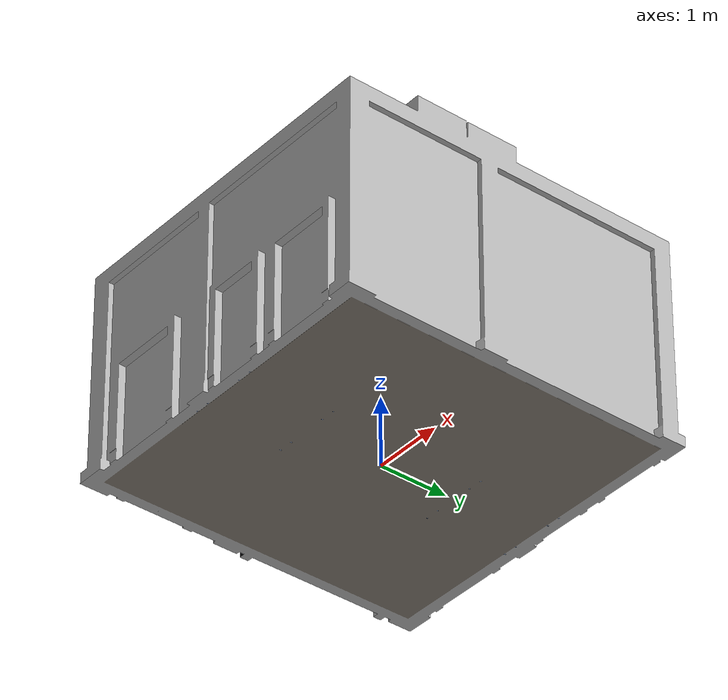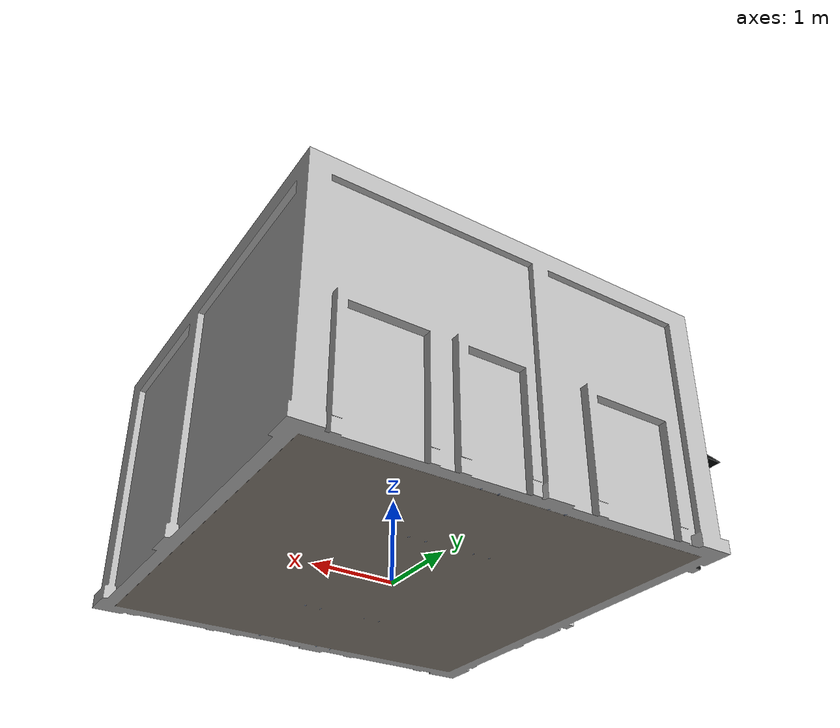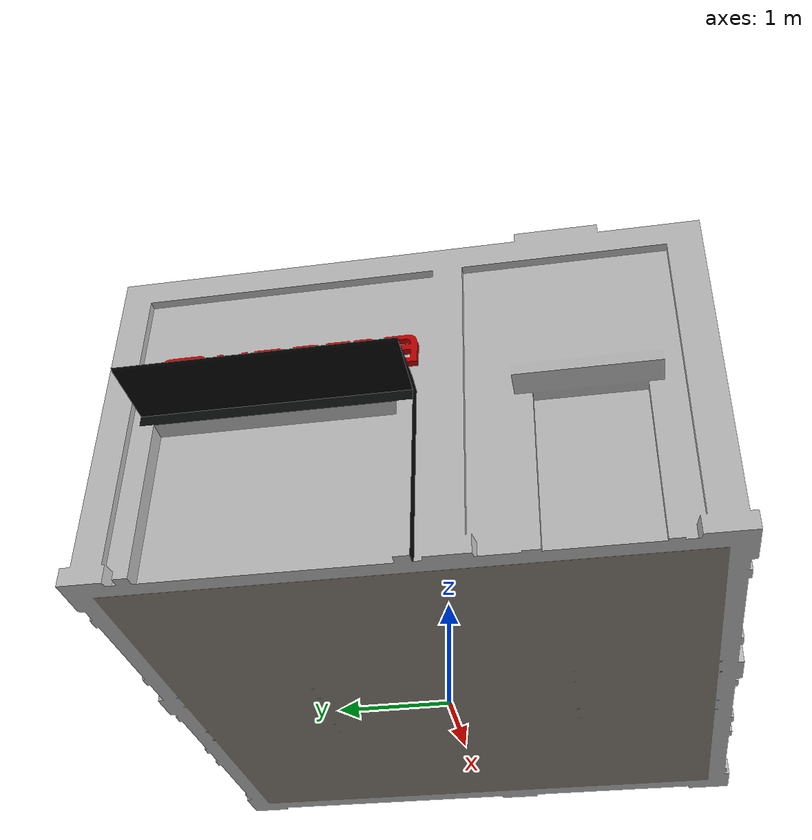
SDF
<?xml version='1.0'?>
<sdf version='1.8'>
  <model name='warehouse'>
    <static>1</static>
    <link name="link">
      <visual name="visual">
        <cast_shadows>false</cast_shadows>
        <geometry>
          <mesh>
            <uri>model://warehouse/meshes/warehouse.dae</uri>
          </mesh>
        </geometry>
      </visual>
    </link>
  </model>
</sdf>
